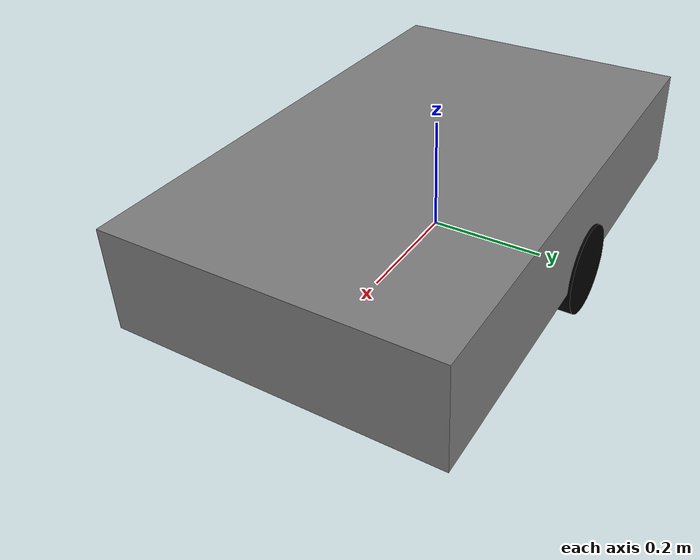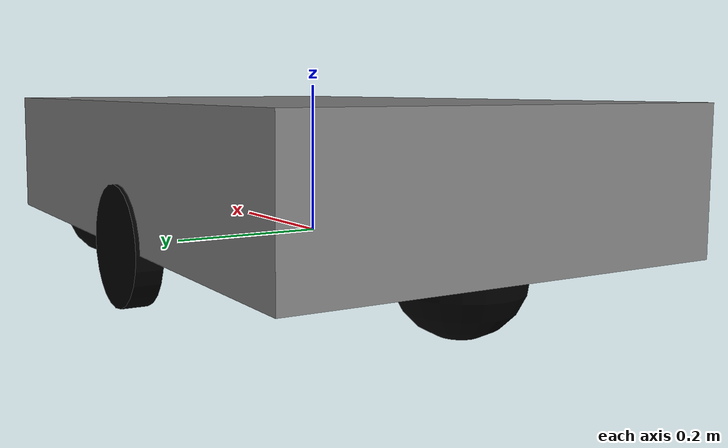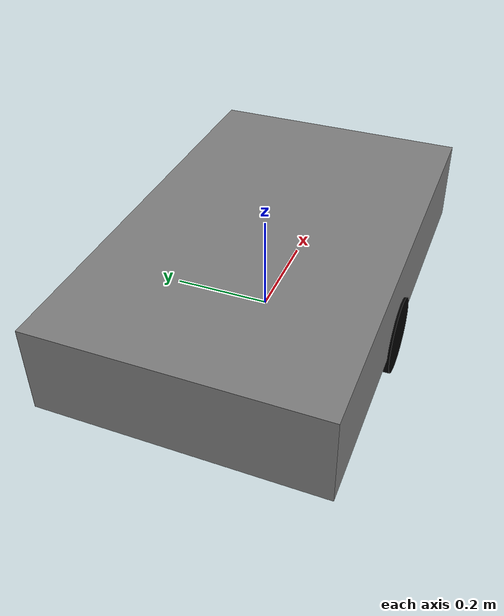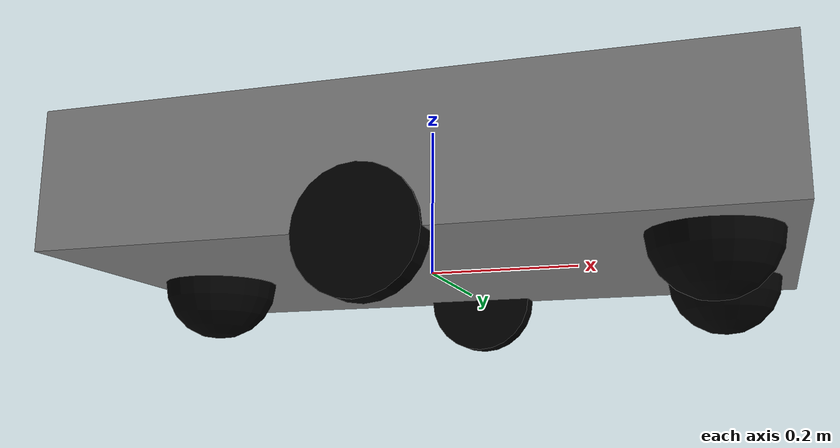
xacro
<?xml version="1.0"?>
<robot xmlns:xacro="http://www.ros.org/wiki/xacro" >

    <xacro:include filename="inertial_macros.xacro"/>

    <material name="gray">
        <color rgba="0.5 0.5 0.5 1" />
    </material>

    <material name="black">
        <color rgba="0 0 0 1" />
    </material>

    <material name="red">
        <color rgba="1 0 0 1" />
    </material>

    <!-- BASE LINK -->

    <link name="base_link">

    </link>

    <!-- BASE_FOOTPRINT LINK-->
    <joint name="base_footprint_joint" type="fixed">
        <parent link="base_link"/>
        <child link="base_footprint"/>
        <origin xyz="0 0 0" rpy="0 0 0"/>
    </joint>

    <link name="base_footprint">
    </link>

    <!-- CHASSIS LINK -->

    <joint name="chassis_joint" type="fixed">
        <parent link="base_link"/>
        <child link="chassis"/>
        <origin xyz="-0.42 0 0"/>
    </joint>

    <link name="chassis">
        <visual>
            <origin xyz="0.45 0 0.09"/>
            <geometry>
                <box size="0.9 0.56 0.18"/>
            </geometry>

            <material name="gray"/>
        </visual>

        <collision>
            <origin xyz="0.45 0 0.09"/>
            <geometry>
                <box size="0.9 0.56 0.18"/>
            </geometry>
        </collision>
        <xacro:inertial_box mass="20" x="0.9" y="0.56" z="0.18">
            <origin xyz="0.45 0 0.09" rpy="0 0 0"/>
        </xacro:inertial_box>
    </link>

    <gazebo reference="chassis">
        <material>Gazebo/gray</material>
    </gazebo>

    <!-- LEFT WHEEL LINK -->

    <joint name="left_wheel_joint" type="continuous">
        <parent link="base_link"/>
        <child link="left_wheel"/>
        <origin xyz="0 0.2675 0" rpy="-${pi/2} 0 0"/>
        <axis xyz="0 0 1"/>
    </joint>

    <link name="left_wheel">
        <visual>
            <geometry>
                <cylinder radius="0.078" length="0.035"/>
            </geometry>

            <material name="black"/>
        </visual>

        <collision>
            <geometry>
                <cylinder radius="0.078" length="0.035"/>
            </geometry>
        </collision>

        <xacro:inertial_cylinder mass="1" length="0.035" radius="0.078">
            <origin xyz="0 0 0" rpy="0 0 0"/>
        </xacro:inertial_cylinder>

    </link>

    <gazebo reference="left_wheel">
        <material>Gazebo/black</material>
    </gazebo>

    <!-- RIGHT WHEEL LINK -->

    <joint name="right_wheel_joint" type="continuous">
        <parent link="base_link"/>
        <child link="right_wheel"/>
        <origin xyz="0 -0.2675 0" rpy="${pi/2} 0 0"/>
        <axis xyz="0 0 -1"/>
    </joint>

    <link name="right_wheel">
        <visual>
            <geometry>
                <cylinder radius="0.078" length="0.035"/>
            </geometry>

            <material name="black"/>
        </visual>

        <collision>
            <geometry>
                <cylinder radius="0.078" length="0.035"/>
            </geometry>
        </collision>

        <xacro:inertial_cylinder mass="1" length="0.035" radius="0.078">
            <origin xyz="0 0 0" rpy="0 0 0"/>
        </xacro:inertial_cylinder>

    </link>

    <gazebo reference="right_wheel">
        <material>Gazebo/black</material>
    </gazebo>

    <!-- BACK CASTER WHEEL LINK -->
    <joint name="back_caster_wheel_joint" type="fixed">
        <parent link="chassis"/>
        <child link="caster_wheel_back"/>
        <origin xyz="0.10 0 0" />
    </joint>

    <link name="caster_wheel_back">
        <visual>
            <geometry>
                <sphere radius="0.078"/>
            </geometry>
            <material name="black"/>
        </visual>

        <collision>
            <geometry>
                <sphere radius="0.078"/>
            </geometry>
        </collision>

        <xacro:inertial_sphere mass="1" radius="0.078">
            <origin xyz="0 0 0" rpy="0 0 0"/>
        </xacro:inertial_sphere>
    </link>

    <gazebo reference="caster_wheel_back">
        <material>Gazebo/black</material>
        <mu1 value="0.001"/>
        <mu2 value="0.001"/>
    </gazebo>

        <!-- RIGHT CASTER WHEEL LINK -->
    <joint name="right_caster_wheel_joint" type="fixed">
        <parent link="chassis"/>
        <child link="caster_wheel_front_right"/>
        <origin xyz="0.80 0.16 0" />
    </joint>

    <link name="caster_wheel_front_right">
        <visual>
            <geometry>
                <sphere radius="0.078"/>
            </geometry>
            <material name="black"/>
        </visual>

        <collision>
            <geometry>
                <sphere radius="0.078"/>
            </geometry>
        </collision>

        <xacro:inertial_sphere mass="1" radius="0.078">
            <origin xyz="0 0 0" rpy="0 0 0"/>
        </xacro:inertial_sphere>
    </link>

    <gazebo reference="caster_wheel_front_right">
        <material>Gazebo/black</material>
        <mu1 value="0.001"/>
        <mu2 value="0.001"/>
    </gazebo>

        <!-- LEFT CASTER WHEEL LINK -->
    <joint name="left_caster_wheel_joint" type="fixed">
        <parent link="chassis"/>
        <child link="caster_wheel_front_left"/>
        <origin xyz="0.80 -0.16 0" />
    </joint>

    <link name="caster_wheel_front_left">
        <visual>
            <geometry>
                <sphere radius="0.078"/>
            </geometry>
            <material name="black"/>
        </visual>

        <collision>
            <geometry>
                <sphere radius="0.078"/>
            </geometry>
        </collision>

        <xacro:inertial_sphere mass="1" radius="0.078">
            <origin xyz="0 0 0" rpy="0 0 0"/>
        </xacro:inertial_sphere>
    </link>

    <gazebo reference="caster_wheel_front_left">
        <material>Gazebo/black</material>
        <mu1 value="0.001"/>
        <mu2 value="0.001"/>
    </gazebo>

</robot>
